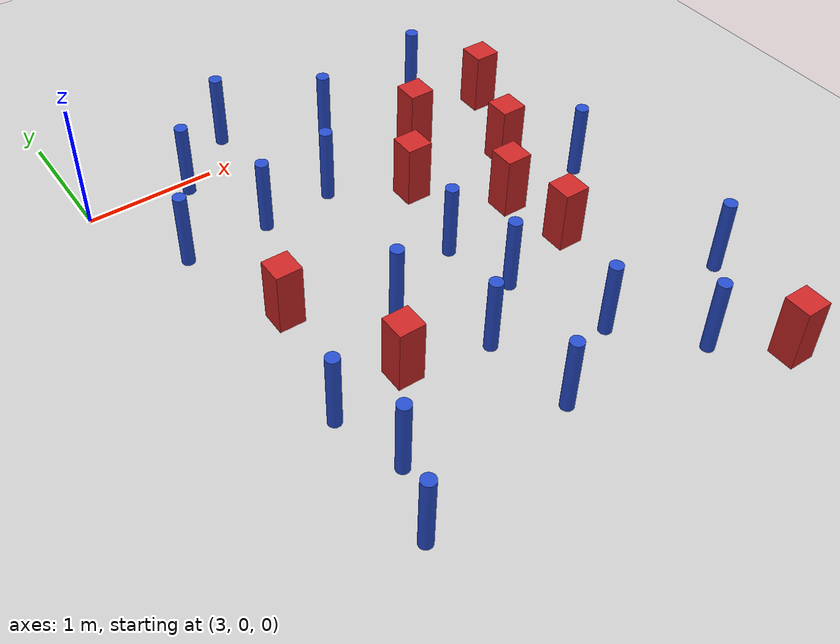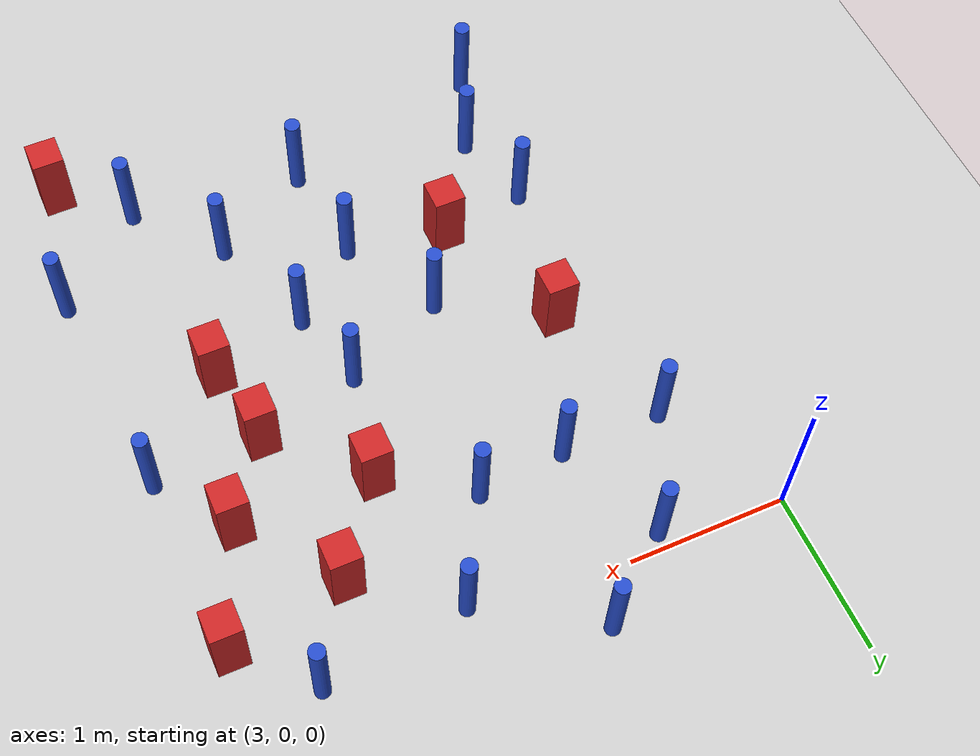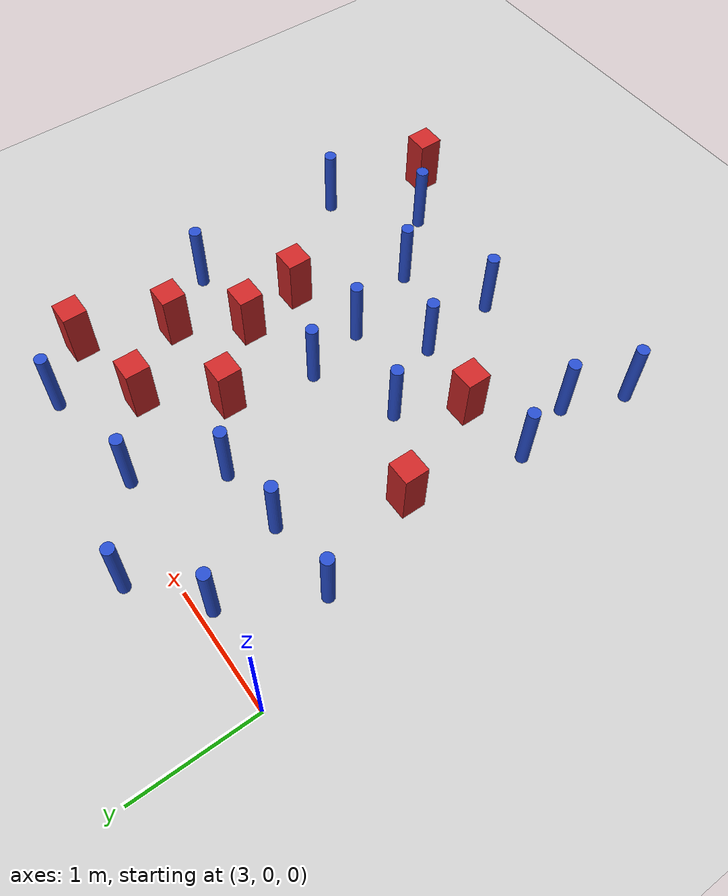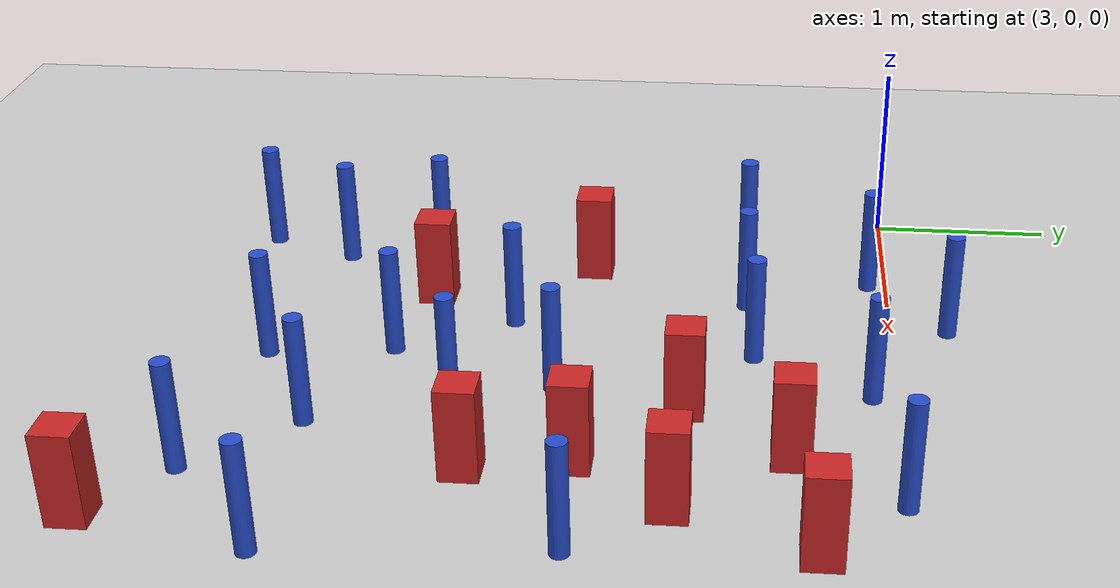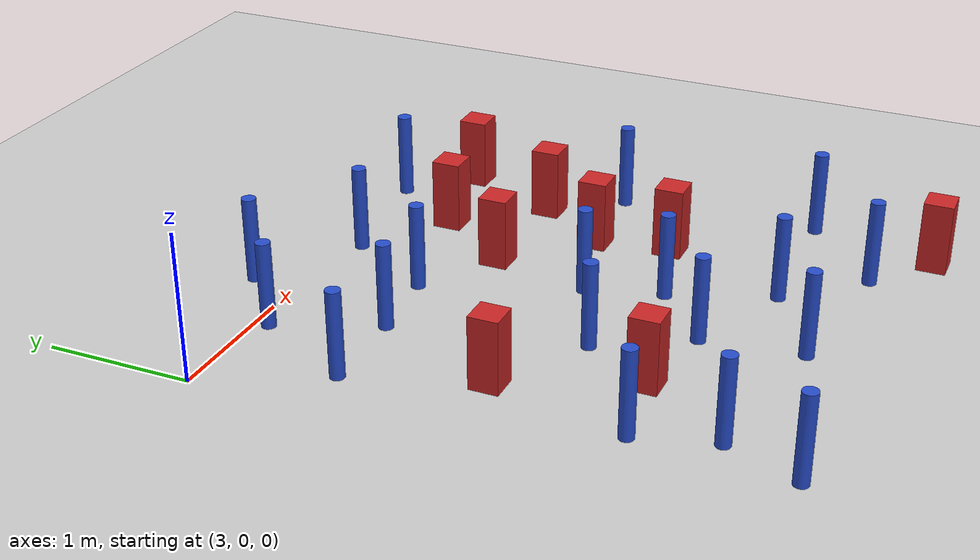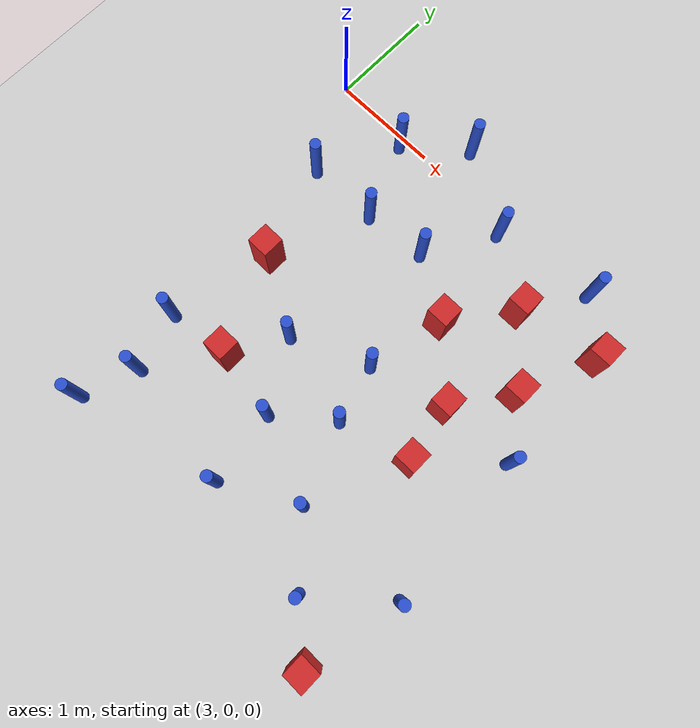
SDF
<sdf version="1.6">
 <world name="default">
  <model name="ground_plane">
   <static>1</static>
   <link name="link">
    <collision name="collision">
     <geometry><plane><normal>0 0 1</normal><size>100 100</size></plane></geometry>
     <surface><friction><ode><mu>100</mu><mu2>50</mu2></ode></friction></surface>
    </collision>
    <visual name="visual">
     <cast_shadows>0</cast_shadows>
     <geometry><plane><normal>0 0 1</normal><size>100 100</size></plane></geometry>
     <material>
      <ambient>1.0 1.0 1.0 1.0</ambient>
      <diffuse>0.8 0.8 0.8 1.0</diffuse>
      <specular>0.01 0.01 0.01 1.000000</specular>
     </material>
    </visual>
   </link>
  </model>
  <model name="pole_obstacle10">
   <static>true</static>
   <pose>4.0586891352 -0.791165849269 -9.47619616065e-06 5.49618799737e-07 2.36310414061e-07 -1.550905348e-07</pose>
   <link name="link">
    <pose>0 0 0.3 0 -0 0</pose>
    <inertial>
     <mass>1</mass>
     <inertia><ixx>0.145833</ixx><ixy>0</ixy><ixz>0</ixz><iyy>0.145833</iyy><iyz>0</iyz><izz>0.125</izz></inertia>
    </inertial>
    <collision name="collision">
     <geometry><cylinder><radius>0.05</radius><length>.6</length></cylinder></geometry>
    </collision>
    <visual name="visual">
     <geometry><cylinder><radius>0.05</radius><length>.6</length></cylinder></geometry>
     <material>
      <script><name>Gazebo/Blue</name><uri>file://media/materials/scripts/gazebo.material</uri></script>
     </material>
    </visual>
   </link>
  </model>
  <model name="pole_obstacle27">
   <static>true</static>
   <pose>3.4896971012 -2.61969887183 -9.47619616065e-06 5.49618799737e-07 2.36310414051e-07 -1.55090534807e-07</pose>
   <link name="link">
    <pose>0 0 0.3 0 -0 0</pose>
    <inertial>
     <mass>1</mass>
     <inertia><ixx>0.145833</ixx><ixy>0</ixy><ixz>0</ixz><iyy>0.145833</iyy><iyz>0</iyz><izz>0.125</izz></inertia>
    </inertial>
    <collision name="collision">
     <geometry><cylinder><radius>0.05</radius><length>.6</length></cylinder></geometry>
    </collision>
    <visual name="visual">
     <geometry><cylinder><radius>0.05</radius><length>.6</length></cylinder></geometry>
     <material>
      <script><name>Gazebo/Blue</name><uri>file://media/materials/scripts/gazebo.material</uri></script>
     </material>
    </visual>
   </link>
  </model>
  <model name="pole_obstacle37">
   <static>true</static>
   <pose>4.77252023178 -3.33316280584 -9.47619616065e-06 5.49618799738e-07 2.36310414051e-07 -1.55090534805e-07</pose>
   <link name="link">
    <pose>0 0 0.3 0 -0 0</pose>
    <inertial>
     <mass>1</mass>
     <inertia><ixx>0.145833</ixx><ixy>0</ixy><ixz>0</ixz><iyy>0.145833</iyy><iyz>0</iyz><izz>0.125</izz></inertia>
    </inertial>
    <collision name="collision">
     <geometry><cylinder><radius>0.05</radius><length>.6</length></cylinder></geometry>
    </collision>
    <visual name="visual">
     <geometry><cylinder><radius>0.05</radius><length>.6</length></cylinder></geometry>
     <material>
      <script><name>Gazebo/Blue</name><uri>file://media/materials/scripts/gazebo.material</uri></script>
     </material>
    </visual>
   </link>
  </model>
  <model name="square_post_obstacle33">
   <static>true</static>
   <pose>5.16798180092 -1.0774412302 -6.11067671241e-07 -5.50515727128e-06 -8.79689657224e-07 2.37013304536e-05</pose>
   <link name="link">
    <pose>0 0 0.25 0 -0 0</pose>
    <inertial>
     <mass>100</mass>
     <inertia>
      <ixx>0.166667</ixx>
      <ixy>0</ixy>
      <ixz>0</ixz>
      <iyy>0.166667</iyy>
      <iyz>0</iyz>
      <izz>0.166667</izz>
     </inertia>
    </inertial>
    <collision name="collision"><geometry><box><size>.2 .2 .5</size></box></geometry></collision>
    <visual name="visual">
     <geometry><box><size>.2 .2 .5</size></box></geometry>
     <material>
      <script><name>Gazebo/Red</name><uri>file://media/materials/scripts/gazebo.material</uri></script>
     </material>
    </visual>
   </link>
  </model>
  <model name="pole_obstacle50">
   <static>true</static>
   <pose>4.98715993987 -0.121906140643 -9.47619616065e-06 5.49618799738e-07 2.36310414065e-07 -1.55090534799e-07</pose>
   <link name="link">
    <pose>0 0 0.3 0 -0 0</pose>
    <inertial>
     <mass>1</mass>
     <inertia><ixx>0.145833</ixx><ixy>0</ixy><ixz>0</ixz><iyy>0.145833</iyy><iyz>0</iyz><izz>0.125</izz></inertia>
    </inertial>
    <collision name="collision">
     <geometry><cylinder><radius>0.05</radius><length>.6</length></cylinder></geometry>
    </collision>
    <visual name="visual">
     <geometry><cylinder><radius>0.05</radius><length>.6</length></cylinder></geometry>
     <material>
      <script><name>Gazebo/Blue</name><uri>file://media/materials/scripts/gazebo.material</uri></script>
     </material>
    </visual>
   </link>
  </model>
  <model name="square_post_obstacle44">
   <static>true</static>
   <pose>4.06432454565 -2.53855015095 -6.11067671241e-07 -5.50515727128e-06 -8.79689657224e-07 2.37013304536e-05</pose>
   <link name="link">
    <pose>0 0 0.25 0 -0 0</pose>
    <inertial>
     <mass>100</mass>
     <inertia>
      <ixx>0.166667</ixx>
      <ixy>0</ixy>
      <ixz>0</ixz>
      <iyy>0.166667</iyy>
      <iyz>0</iyz>
      <izz>0.166667</izz>
     </inertia>
    </inertial>
    <collision name="collision"><geometry><box><size>.2 .2 .5</size></box></geometry></collision>
    <visual name="visual">
     <geometry><box><size>.2 .2 .5</size></box></geometry>
     <material>
      <script><name>Gazebo/Red</name><uri>file://media/materials/scripts/gazebo.material</uri></script>
     </material>
    </visual>
   </link>
  </model>
  <model name="square_post_obstacle46">
   <static>true</static>
   <pose>3.69360669711 -1.67688047784 -6.11067671241e-07 -5.50515727128e-06 -8.79689657224e-07 2.37013304536e-05</pose>
   <link name="link">
    <pose>0 0 0.25 0 -0 0</pose>
    <inertial>
     <mass>100</mass>
     <inertia>
      <ixx>0.166667</ixx>
      <ixy>0</ixy>
      <ixz>0</ixz>
      <iyy>0.166667</iyy>
      <iyz>0</iyz>
      <izz>0.166667</izz>
     </inertia>
    </inertial>
    <collision name="collision"><geometry><box><size>.2 .2 .5</size></box></geometry></collision>
    <visual name="visual">
     <geometry><box><size>.2 .2 .5</size></box></geometry>
     <material>
      <script><name>Gazebo/Red</name><uri>file://media/materials/scripts/gazebo.material</uri></script>
     </material>
    </visual>
   </link>
  </model>
  <model name="square_post_obstacle47">
   <static>true</static>
   <pose>5.57472550975 -0.539554351057 -6.11067671241e-07 -5.50515727128e-06 -8.79689657224e-07 2.37013304536e-05</pose>
   <link name="link">
    <pose>0 0 0.25 0 -0 0</pose>
    <inertial>
     <mass>100</mass>
     <inertia>
      <ixx>0.166667</ixx>
      <ixy>0</ixy>
      <ixz>0</ixz>
      <iyy>0.166667</iyy>
      <iyz>0</iyz>
      <izz>0.166667</izz>
     </inertia>
    </inertial>
    <collision name="collision"><geometry><box><size>.2 .2 .5</size></box></geometry></collision>
    <visual name="visual">
     <geometry><box><size>.2 .2 .5</size></box></geometry>
     <material>
      <script><name>Gazebo/Red</name><uri>file://media/materials/scripts/gazebo.material</uri></script>
     </material>
    </visual>
   </link>
  </model>
  <model name="pole_obstacle64">
   <static>true</static>
   <pose>5.15164421931 -2.28391200786 -9.47619616065e-06 5.49618799738e-07 2.36310414051e-07 -1.55090534805e-07</pose>
   <link name="link">
    <pose>0 0 0.3 0 -0 0</pose>
    <inertial>
     <mass>1</mass>
     <inertia><ixx>0.145833</ixx><ixy>0</ixy><ixz>0</ixz><iyy>0.145833</iyy><iyz>0</iyz><izz>0.125</izz></inertia>
    </inertial>
    <collision name="collision">
     <geometry><cylinder><radius>0.05</radius><length>.6</length></cylinder></geometry>
    </collision>
    <visual name="visual">
     <geometry><cylinder><radius>0.05</radius><length>.6</length></cylinder></geometry>
     <material>
      <script><name>Gazebo/Blue</name><uri>file://media/materials/scripts/gazebo.material</uri></script>
     </material>
    </visual>
   </link>
  </model>
  <model name="pole_obstacle66">
   <static>true</static>
   <pose>5.87205390069 -3.47943715015 -9.47619616065e-06 5.49618799738e-07 2.36310414051e-07 -1.55090534805e-07</pose>
   <link name="link">
    <pose>0 0 0.3 0 -0 0</pose>
    <inertial>
     <mass>1</mass>
     <inertia><ixx>0.145833</ixx><ixy>0</ixy><ixz>0</ixz><iyy>0.145833</iyy><iyz>0</iyz><izz>0.125</izz></inertia>
    </inertial>
    <collision name="collision">
     <geometry><cylinder><radius>0.05</radius><length>.6</length></cylinder></geometry>
    </collision>
    <visual name="visual">
     <geometry><cylinder><radius>0.05</radius><length>.6</length></cylinder></geometry>
     <material>
      <script><name>Gazebo/Blue</name><uri>file://media/materials/scripts/gazebo.material</uri></script>
     </material>
    </visual>
   </link>
  </model>
  <model name="pole_obstacle70">
   <static>true</static>
   <pose>5.9205615285 0.000213088698454 -9.47619616065e-06 5.49618799737e-07 2.36310414074e-07 -1.55090534794e-07</pose>
   <link name="link">
    <pose>0 0 0.3 0 -0 0</pose>
    <inertial>
     <mass>1</mass>
     <inertia><ixx>0.145833</ixx><ixy>0</ixy><ixz>0</ixz><iyy>0.145833</iyy><iyz>0</iyz><izz>0.125</izz></inertia>
    </inertial>
    <collision name="collision">
     <geometry><cylinder><radius>0.05</radius><length>.6</length></cylinder></geometry>
    </collision>
    <visual name="visual">
     <geometry><cylinder><radius>0.05</radius><length>.6</length></cylinder></geometry>
     <material>
      <script><name>Gazebo/Blue</name><uri>file://media/materials/scripts/gazebo.material</uri></script>
     </material>
    </visual>
   </link>
  </model>
  <model name="pole_obstacle85">
   <static>true</static>
   <pose>5.00978849089 -1.76841716322 -9.47619616065e-06 5.49618799738e-07 2.36310414071e-07 -1.55090534796e-07</pose>
   <link name="link">
    <pose>0 0 0.3 0 -0 0</pose>
    <inertial>
     <mass>1</mass>
     <inertia><ixx>0.145833</ixx><ixy>0</ixy><ixz>0</ixz><iyy>0.145833</iyy><iyz>0</iyz><izz>0.125</izz></inertia>
    </inertial>
    <collision name="collision">
     <geometry><cylinder><radius>0.05</radius><length>.6</length></cylinder></geometry>
    </collision>
    <visual name="visual">
     <geometry><cylinder><radius>0.05</radius><length>.6</length></cylinder></geometry>
     <material>
      <script><name>Gazebo/Blue</name><uri>file://media/materials/scripts/gazebo.material</uri></script>
     </material>
    </visual>
   </link>
  </model>
  <model name="pole_obstacle86">
   <static>true</static>
   <pose>4.62675508361 -0.737385310205 -9.47619616065e-06 5.49618799737e-07 2.36310414061e-07 -1.550905348e-07</pose>
   <link name="link">
    <pose>0 0 0.3 0 -0 0</pose>
    <inertial>
     <mass>1</mass>
     <inertia><ixx>0.145833</ixx><ixy>0</ixy><ixz>0</ixz><iyy>0.145833</iyy><iyz>0</iyz><izz>0.125</izz></inertia>
    </inertial>
    <collision name="collision">
     <geometry><cylinder><radius>0.05</radius><length>.6</length></cylinder></geometry>
    </collision>
    <visual name="visual">
     <geometry><cylinder><radius>0.05</radius><length>.6</length></cylinder></geometry>
     <material>
      <script><name>Gazebo/Blue</name><uri>file://media/materials/scripts/gazebo.material</uri></script>
     </material>
    </visual>
   </link>
  </model>
  <model name="square_post_obstacle75">
   <static>true</static>
   <pose>6.03280689769 -1.10442735511 -6.11067671241e-07 -5.50515727128e-06 -8.79689657224e-07 2.37013304536e-05</pose>
   <link name="link">
    <pose>0 0 0.25 0 -0 0</pose>
    <inertial>
     <mass>100</mass>
     <inertia>
      <ixx>0.166667</ixx>
      <ixy>0</ixy>
      <ixz>0</ixz>
      <iyy>0.166667</iyy>
      <iyz>0</iyz>
      <izz>0.166667</izz>
     </inertia>
    </inertial>
    <collision name="collision"><geometry><box><size>.2 .2 .5</size></box></geometry></collision>
    <visual name="visual">
     <geometry><box><size>.2 .2 .5</size></box></geometry>
     <material>
      <script><name>Gazebo/Red</name><uri>file://media/materials/scripts/gazebo.material</uri></script>
     </material>
    </visual>
   </link>
  </model>
  <model name="pole_obstacle99">
   <static>true</static>
   <pose>4.34316481863 -2.06135186683 -9.47619616065e-06 5.49618799738e-07 2.36310414051e-07 -1.55090534805e-07</pose>
   <link name="link">
    <pose>0 0 0.3 0 -0 0</pose>
    <inertial>
     <mass>1</mass>
     <inertia><ixx>0.145833</ixx><ixy>0</ixy><ixz>0</ixz><iyy>0.145833</iyy><iyz>0</iyz><izz>0.125</izz></inertia>
    </inertial>
    <collision name="collision">
     <geometry><cylinder><radius>0.05</radius><length>.6</length></cylinder></geometry>
    </collision>
    <visual name="visual">
     <geometry><cylinder><radius>0.05</radius><length>.6</length></cylinder></geometry>
     <material>
      <script><name>Gazebo/Blue</name><uri>file://media/materials/scripts/gazebo.material</uri></script>
     </material>
    </visual>
   </link>
  </model>
  <model name="pole_obstacle102">
   <static>true</static>
   <pose>6.47759283279 -2.95869558428 -9.47619616065e-06 5.49618799738e-07 2.36310414051e-07 -1.55090534805e-07</pose>
   <link name="link">
    <pose>0 0 0.3 0 -0 0</pose>
    <inertial>
     <mass>1</mass>
     <inertia><ixx>0.145833</ixx><ixy>0</ixy><ixz>0</ixz><iyy>0.145833</iyy><iyz>0</iyz><izz>0.125</izz></inertia>
    </inertial>
    <collision name="collision">
     <geometry><cylinder><radius>0.05</radius><length>.6</length></cylinder></geometry>
    </collision>
    <visual name="visual">
     <geometry><cylinder><radius>0.05</radius><length>.6</length></cylinder></geometry>
     <material>
      <script><name>Gazebo/Blue</name><uri>file://media/materials/scripts/gazebo.material</uri></script>
     </material>
    </visual>
   </link>
  </model>
  <model name="pole_obstacle103">
   <static>true</static>
   <pose>3.44869032723 -3.64311992544 -9.47619616065e-06 5.49618799737e-07 2.36310414051e-07 -1.55090534807e-07</pose>
   <link name="link">
    <pose>0 0 0.3 0 -0 0</pose>
    <inertial>
     <mass>1</mass>
     <inertia><ixx>0.145833</ixx><ixy>0</ixy><ixz>0</ixz><iyy>0.145833</iyy><iyz>0</iyz><izz>0.125</izz></inertia>
    </inertial>
    <collision name="collision">
     <geometry><cylinder><radius>0.05</radius><length>.6</length></cylinder></geometry>
    </collision>
    <visual name="visual">
     <geometry><cylinder><radius>0.05</radius><length>.6</length></cylinder></geometry>
     <material>
      <script><name>Gazebo/Blue</name><uri>file://media/materials/scripts/gazebo.material</uri></script>
     </material>
    </visual>
   </link>
  </model>
  <model name="pole_obstacle108">
   <static>true</static>
   <pose>3.77387223024 -0.0992230724648 -9.47619616065e-06 5.49618799737e-07 2.36310414066e-07 -1.55090534798e-07</pose>
   <link name="link">
    <pose>0 0 0.3 0 -0 0</pose>
    <inertial>
     <mass>1</mass>
     <inertia><ixx>0.145833</ixx><ixy>0</ixy><ixz>0</ixz><iyy>0.145833</iyy><iyz>0</iyz><izz>0.125</izz></inertia>
    </inertial>
    <collision name="collision">
     <geometry><cylinder><radius>0.05</radius><length>.6</length></cylinder></geometry>
    </collision>
    <visual name="visual">
     <geometry><cylinder><radius>0.05</radius><length>.6</length></cylinder></geometry>
     <material>
      <script><name>Gazebo/Blue</name><uri>file://media/materials/scripts/gazebo.material</uri></script>
     </material>
    </visual>
   </link>
  </model>
  <model name="square_post_obstacle110">
   <static>true</static>
   <pose>6.3223317188 -0.403885849746 -6.11067671241e-07 -5.50515727128e-06 -8.79689657224e-07 2.37013304536e-05</pose>
   <link name="link">
    <pose>0 0 0.25 0 -0 0</pose>
    <inertial>
     <mass>100</mass>
     <inertia>
      <ixx>0.166667</ixx>
      <ixy>0</ixy>
      <ixz>0</ixz>
      <iyy>0.166667</iyy>
      <iyz>0</iyz>
      <izz>0.166667</izz>
     </inertia>
    </inertial>
    <collision name="collision"><geometry><box><size>.2 .2 .5</size></box></geometry></collision>
    <visual name="visual">
     <geometry><box><size>.2 .2 .5</size></box></geometry>
     <material>
      <script><name>Gazebo/Red</name><uri>file://media/materials/scripts/gazebo.material</uri></script>
     </material>
    </visual>
   </link>
  </model>
  <model name="pole_obstacle114">
   <static>true</static>
   <pose>6.37557432015 -1.56660489595 -9.47619616065e-06 5.49618799738e-07 2.36310414071e-07 -1.55090534796e-07</pose>
   <link name="link">
    <pose>0 0 0.3 0 -0 0</pose>
    <inertial>
     <mass>1</mass>
     <inertia><ixx>0.145833</ixx><ixy>0</ixy><ixz>0</ixz><iyy>0.145833</iyy><iyz>0</iyz><izz>0.125</izz></inertia>
    </inertial>
    <collision name="collision">
     <geometry><cylinder><radius>0.05</radius><length>.6</length></cylinder></geometry>
    </collision>
    <visual name="visual">
     <geometry><cylinder><radius>0.05</radius><length>.6</length></cylinder></geometry>
     <material>
      <script><name>Gazebo/Blue</name><uri>file://media/materials/scripts/gazebo.material</uri></script>
     </material>
    </visual>
   </link>
  </model>
  <model name="square_post_obstacle112">
   <static>true</static>
   <pose>6.28010087213 -3.82562796978 -6.11067671241e-07 -5.50515727128e-06 -8.79689657224e-07 2.37013304536e-05</pose>
   <link name="link">
    <pose>0 0 0.25 0 -0 0</pose>
    <inertial>
     <mass>100</mass>
     <inertia>
      <ixx>0.166667</ixx>
      <ixy>0</ixy>
      <ixz>0</ixz>
      <iyy>0.166667</iyy>
      <iyz>0</iyz>
      <izz>0.166667</izz>
     </inertia>
    </inertial>
    <collision name="collision"><geometry><box><size>.2 .2 .5</size></box></geometry></collision>
    <visual name="visual">
     <geometry><box><size>.2 .2 .5</size></box></geometry>
     <material>
      <script><name>Gazebo/Red</name><uri>file://media/materials/scripts/gazebo.material</uri></script>
     </material>
    </visual>
   </link>
  </model>
  <model name="square_post_obstacle115">
   <static>true</static>
   <pose>5.78254780272 -2.11180560015 -6.11067671241e-07 -5.50515727128e-06 -8.79689657224e-07 2.37013304536e-05</pose>
   <link name="link">
    <pose>0 0 0.25 0 -0 0</pose>
    <inertial>
     <mass>100</mass>
     <inertia>
      <ixx>0.166667</ixx>
      <ixy>0</ixy>
      <ixz>0</ixz>
      <iyy>0.166667</iyy>
      <iyz>0</iyz>
      <izz>0.166667</izz>
     </inertia>
    </inertial>
    <collision name="collision"><geometry><box><size>.2 .2 .5</size></box></geometry></collision>
    <visual name="visual">
     <geometry><box><size>.2 .2 .5</size></box></geometry>
     <material>
      <script><name>Gazebo/Red</name><uri>file://media/materials/scripts/gazebo.material</uri></script>
     </material>
    </visual>
   </link>
  </model>
  <model name="square_post_obstacle134">
   <static>true</static>
   <pose>5.68554252926 -1.59371618199 -6.11067671241e-07 -5.50515727128e-06 -8.79689657224e-07 2.37013304536e-05</pose>
   <link name="link">
    <pose>0 0 0.25 0 -0 0</pose>
    <inertial>
     <mass>100</mass>
     <inertia>
      <ixx>0.166667</ixx>
      <ixy>0</ixy>
      <ixz>0</ixz>
      <iyy>0.166667</iyy>
      <iyz>0</iyz>
      <izz>0.166667</izz>
     </inertia>
    </inertial>
    <collision name="collision"><geometry><box><size>.2 .2 .5</size></box></geometry></collision>
    <visual name="visual">
     <geometry><box><size>.2 .2 .5</size></box></geometry>
     <material>
      <script><name>Gazebo/Red</name><uri>file://media/materials/scripts/gazebo.material</uri></script>
     </material>
    </visual>
   </link>
  </model>
  <model name="pole_obstacle156">
   <static>true</static>
   <pose>5.418821201 -2.97748874632 -9.47619616065e-06 5.49618799738e-07 2.36310414051e-07 -1.55090534805e-07</pose>
   <link name="link">
    <pose>0 0 0.3 0 -0 0</pose>
    <inertial>
     <mass>1</mass>
     <inertia><ixx>0.145833</ixx><ixy>0</ixy><ixz>0</ixz><iyy>0.145833</iyy><iyz>0</iyz><izz>0.125</izz></inertia>
    </inertial>
    <collision name="collision">
     <geometry><cylinder><radius>0.05</radius><length>.6</length></cylinder></geometry>
    </collision>
    <visual name="visual">
     <geometry><cylinder><radius>0.05</radius><length>.6</length></cylinder></geometry>
     <material>
      <script><name>Gazebo/Blue</name><uri>file://media/materials/scripts/gazebo.material</uri></script>
     </material>
    </visual>
   </link>
  </model>
  <model name="pole_obstacle157">
   <static>true</static>
   <pose>3.63855380957 -3.14537525915 -9.47619616065e-06 5.49618799737e-07 2.36310414051e-07 -1.55090534807e-07</pose>
   <link name="link">
    <pose>0 0 0.3 0 -0 0</pose>
    <inertial>
     <mass>1</mass>
     <inertia><ixx>0.145833</ixx><ixy>0</ixy><ixz>0</ixz><iyy>0.145833</iyy><iyz>0</iyz><izz>0.125</izz></inertia>
    </inertial>
    <collision name="collision">
     <geometry><cylinder><radius>0.05</radius><length>.6</length></cylinder></geometry>
    </collision>
    <visual name="visual">
     <geometry><cylinder><radius>0.05</radius><length>.6</length></cylinder></geometry>
     <material>
      <script><name>Gazebo/Blue</name><uri>file://media/materials/scripts/gazebo.material</uri></script>
     </material>
    </visual>
   </link>
  </model>
  <model name="pole_obstacle184">
   <static>true</static>
   <pose>4.28011038258 0.313926557623 -9.47619616065e-06 5.49618799737e-07 2.36310414057e-07 -1.55090534802e-07</pose>
   <link name="link">
    <pose>0 0 0.3 0 -0 0</pose>
    <inertial>
     <mass>1</mass>
     <inertia><ixx>0.145833</ixx><ixy>0</ixy><ixz>0</ixz><iyy>0.145833</iyy><iyz>0</iyz><izz>0.125</izz></inertia>
    </inertial>
    <collision name="collision">
     <geometry><cylinder><radius>0.05</radius><length>.6</length></cylinder></geometry>
    </collision>
    <visual name="visual">
     <geometry><cylinder><radius>0.05</radius><length>.6</length></cylinder></geometry>
     <material>
      <script><name>Gazebo/Blue</name><uri>file://media/materials/scripts/gazebo.material</uri></script>
     </material>
    </visual>
   </link>
  </model>
  <model name="pole_obstacle196">
   <static>true</static>
   <pose>4.68707309009 -2.66361748396 -9.47619616065e-06 5.49618799738e-07 2.36310414051e-07 -1.55090534805e-07</pose>
   <link name="link">
    <pose>0 0 0.3 0 -0 0</pose>
    <inertial>
     <mass>1</mass>
     <inertia><ixx>0.145833</ixx><ixy>0</ixy><ixz>0</ixz><iyy>0.145833</iyy><iyz>0</iyz><izz>0.125</izz></inertia>
    </inertial>
    <collision name="collision">
     <geometry><cylinder><radius>0.05</radius><length>.6</length></cylinder></geometry>
    </collision>
    <visual name="visual">
     <geometry><cylinder><radius>0.05</radius><length>.6</length></cylinder></geometry>
     <material>
      <script><name>Gazebo/Blue</name><uri>file://media/materials/scripts/gazebo.material</uri></script>
     </material>
    </visual>
   </link>
  </model>
  <model name="pole_obstacle222">
   <static>true</static>
   <pose>3.40804000939 -0.79793297922 -9.47619616065e-06 5.49618799737e-07 2.36310414035e-07 -1.55090534817e-07</pose>
   <link name="link">
    <pose>0 0 0.3 0 -0 0</pose>
    <inertial>
     <mass>1</mass>
     <inertia><ixx>0.145833</ixx><ixy>0</ixy><ixz>0</ixz><iyy>0.145833</iyy><iyz>0</iyz><izz>0.125</izz></inertia>
    </inertial>
    <collision name="collision">
     <geometry><cylinder><radius>0.05</radius><length>.6</length></cylinder></geometry>
    </collision>
    <visual name="visual">
     <geometry><cylinder><radius>0.05</radius><length>.6</length></cylinder></geometry>
     <material>
      <script><name>Gazebo/Blue</name><uri>file://media/materials/scripts/gazebo.material</uri></script>
     </material>
    </visual>
   </link>
  </model>
 </world>
</sdf>
